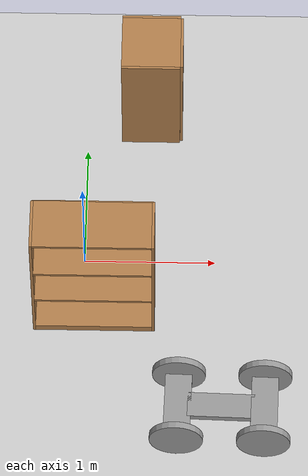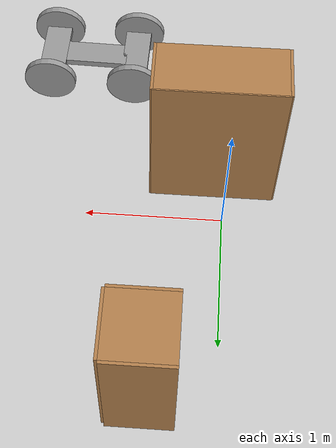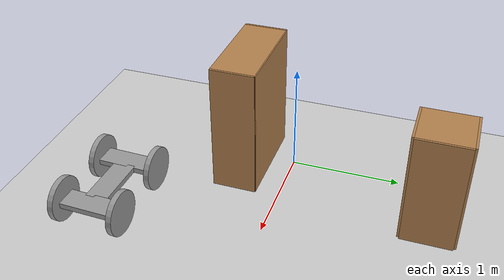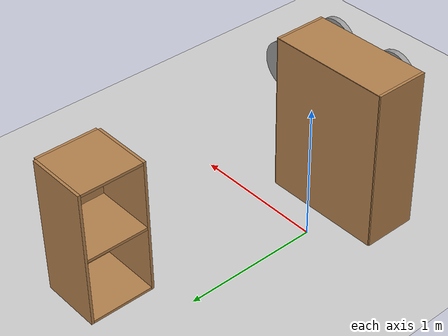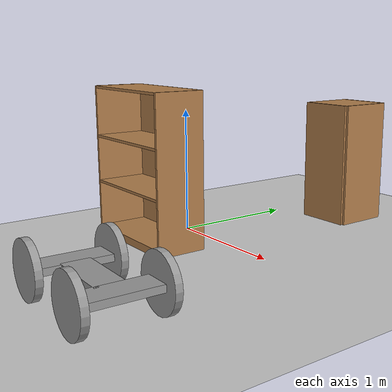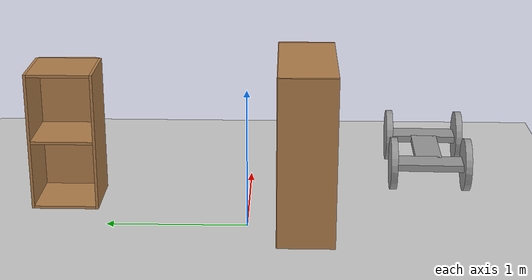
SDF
<sdf version="1.6">
 <world name="default">
  <model name="ground_plane">
   <static>1</static>
   <link name="link">
    <collision name="collision">
     <geometry><plane><normal>0 0 1</normal><size>100 100</size></plane></geometry>
     <surface><friction><ode><mu>100</mu><mu2>50</mu2></ode></friction></surface>
    </collision>
    <visual name="visual">
     <cast_shadows>0</cast_shadows>
     <geometry><plane><normal>0 0 1</normal><size>100 100</size></plane></geometry>
     <material>
      <script><uri>file://media/materials/scripts/gazebo.material</uri><name>Gazebo/Grey</name></script>
     </material>
    </visual>
   </link>
  </model>
  <model name="rccar-no-friction_clone">
   <link name="link_0">
    <pose>-0 0 0.2 0 -0 0</pose>
    <inertial>
     <mass>1</mass>
     <inertia>
      <ixx>0.166667</ixx>
      <ixy>0</ixy>
      <ixz>0</ixz>
      <iyy>0.166667</iyy>
      <iyz>0</iyz>
      <izz>0.166667</izz>
     </inertia>
    </inertial>
    <visual name="visual">
     <geometry><box><size>0.5 0.2 0.05</size></box></geometry>
     <material>
      <lighting>1</lighting>
      <script><uri>file://media/materials/scripts/gazebo.material</uri><name>Gazebo/Grey</name></script>
      <ambient>0.3 0.3 0.3 1</ambient>
      <diffuse>0.7 0.7 0.7 1</diffuse>
      <specular>0.01 0.01 0.01 1</specular>
      <emissive>0 0 0 1</emissive>
      <shader type="vertex"><normal_map>__default__</normal_map></shader>
     </material>
    </visual>
    <collision name="collision">
     <geometry><box><size>0.5 0.2 0.05</size></box></geometry>
     <surface>
      <friction>
       <ode><mu>1</mu><mu2>1</mu2><fdir1>0 0 0</fdir1><slip1>0</slip1><slip2>0</slip2></ode>
       <torsional>
        <coefficient>1</coefficient>
        <patch_radius>0</patch_radius>
        <surface_radius>0</surface_radius>
        <use_patch_radius>1</use_patch_radius>
        <ode><slip>0</slip></ode>
       </torsional>
      </friction>
      <bounce><restitution_coefficient>0</restitution_coefficient><threshold>1e+06</threshold></bounce>
      <contact>
       <collide_without_contact>0</collide_without_contact>
       <collide_without_contact_bitmask>1</collide_without_contact_bitmask>
       <collide_bitmask>1</collide_bitmask>
       <ode>
        <soft_cfm>0</soft_cfm>
        <soft_erp>0.2</soft_erp>
        <kp>1e+13</kp>
        <kd>1</kd>
        <max_vel>0.01</max_vel>
        <min_depth>0</min_depth>
       </ode>
       <bullet>
        <split_impulse>1</split_impulse>
        <split_impulse_penetration_threshold>-0.01</split_impulse_penetration_threshold>
        <soft_cfm>0</soft_cfm>
        <soft_erp>0.2</soft_erp>
        <kp>1e+13</kp>
        <kd>1</kd>
       </bullet>
      </contact>
     </surface>
    </collision>
   </link>
   <link name="link_0_0">
    <pose>-0 -0.322937 0.2 0 -0 0</pose>
    <inertial>
     <mass>1</mass>
     <inertia>
      <ixx>0.166667</ixx>
      <ixy>0</ixy>
      <ixz>0</ixz>
      <iyy>0.166667</iyy>
      <iyz>0</iyz>
      <izz>0.166667</izz>
     </inertia>
    </inertial>
    <visual name="visual">
     <geometry><box><size>0.2 0.5 0.05</size></box></geometry>
     <material>
      <lighting>1</lighting>
      <script><uri>file://media/materials/scripts/gazebo.material</uri><name>Gazebo/Grey</name></script>
      <ambient>0.3 0.3 0.3 1</ambient>
      <diffuse>0.7 0.7 0.7 1</diffuse>
      <specular>0.01 0.01 0.01 1</specular>
      <emissive>0 0 0 1</emissive>
      <shader type="vertex"><normal_map>__default__</normal_map></shader>
     </material>
    </visual>
    <collision name="collision">
     <geometry><box><size>0.2 0.5 0.05</size></box></geometry>
     <surface>
      <friction>
       <ode><mu>1</mu><mu2>1</mu2><fdir1>0 0 0</fdir1><slip1>0</slip1><slip2>0</slip2></ode>
       <torsional>
        <coefficient>1</coefficient>
        <patch_radius>0</patch_radius>
        <surface_radius>0</surface_radius>
        <use_patch_radius>1</use_patch_radius>
        <ode><slip>0</slip></ode>
       </torsional>
      </friction>
      <bounce><restitution_coefficient>0</restitution_coefficient><threshold>1e+06</threshold></bounce>
      <contact>
       <collide_without_contact>0</collide_without_contact>
       <collide_without_contact_bitmask>1</collide_without_contact_bitmask>
       <collide_bitmask>1</collide_bitmask>
       <ode>
        <soft_cfm>0</soft_cfm>
        <soft_erp>0.2</soft_erp>
        <kp>1e+13</kp>
        <kd>1</kd>
        <max_vel>0.01</max_vel>
        <min_depth>0</min_depth>
       </ode>
       <bullet>
        <split_impulse>1</split_impulse>
        <split_impulse_penetration_threshold>-0.01</split_impulse_penetration_threshold>
        <soft_cfm>0</soft_cfm>
        <soft_erp>0.2</soft_erp>
        <kp>1e+13</kp>
        <kd>1</kd>
       </bullet>
      </contact>
     </surface>
    </collision>
   </link>
   <link name="link_0_clone">
    <pose>0.002934 -0.646886 0.2 0 -0 0</pose>
    <inertial>
     <mass>1</mass>
     <inertia>
      <ixx>0.166667</ixx>
      <ixy>0</ixy>
      <ixz>0</ixz>
      <iyy>0.166667</iyy>
      <iyz>0</iyz>
      <izz>0.166667</izz>
     </inertia>
    </inertial>
    <visual name="visual">
     <geometry><box><size>0.5 0.2 0.05</size></box></geometry>
     <material>
      <lighting>1</lighting>
      <script><uri>file://media/materials/scripts/gazebo.material</uri><name>Gazebo/Grey</name></script>
      <ambient>0.3 0.3 0.3 1</ambient>
      <diffuse>0.7 0.7 0.7 1</diffuse>
      <specular>0.01 0.01 0.01 1</specular>
      <emissive>0 0 0 1</emissive>
      <shader type="vertex"><normal_map>__default__</normal_map></shader>
     </material>
    </visual>
    <collision name="collision">
     <geometry><box><size>0.5 0.2 0.05</size></box></geometry>
     <surface>
      <friction>
       <ode><mu>1</mu><mu2>1</mu2><fdir1>0 0 0</fdir1><slip1>0</slip1><slip2>0</slip2></ode>
       <torsional>
        <coefficient>1</coefficient>
        <patch_radius>0</patch_radius>
        <surface_radius>0</surface_radius>
        <use_patch_radius>1</use_patch_radius>
        <ode><slip>0</slip></ode>
       </torsional>
      </friction>
      <bounce><restitution_coefficient>0</restitution_coefficient><threshold>1e+06</threshold></bounce>
      <contact>
       <collide_without_contact>0</collide_without_contact>
       <collide_without_contact_bitmask>1</collide_without_contact_bitmask>
       <collide_bitmask>1</collide_bitmask>
       <ode>
        <soft_cfm>0</soft_cfm>
        <soft_erp>0.2</soft_erp>
        <kp>1e+13</kp>
        <kd>1</kd>
        <max_vel>0.01</max_vel>
        <min_depth>0</min_depth>
       </ode>
       <bullet>
        <split_impulse>1</split_impulse>
        <split_impulse_penetration_threshold>-0.01</split_impulse_penetration_threshold>
        <soft_cfm>0</soft_cfm>
        <soft_erp>0.2</soft_erp>
        <kp>1e+13</kp>
        <kd>1</kd>
       </bullet>
      </contact>
     </surface>
    </collision>
   </link>
   <link name="link_1">
    <pose>0.275001 -0 0.2 1.5708 -0 1.5708</pose>
    <inertial>
     <mass>1</mass>
     <inertia><ixx>0.145833</ixx><ixy>0</ixy><ixz>0</ixz><iyy>0.145833</iyy><iyz>0</iyz><izz>0.125</izz></inertia>
    </inertial>
    <visual name="visual">
     <geometry><cylinder><radius>0.2</radius><length>0.05</length></cylinder></geometry>
     <material>
      <lighting>1</lighting>
      <script><uri>file://media/materials/scripts/gazebo.material</uri><name>Gazebo/Grey</name></script>
      <ambient>0.3 0.3 0.3 1</ambient>
      <diffuse>0.7 0.7 0.7 1</diffuse>
      <specular>0.01 0.01 0.01 1</specular>
      <emissive>0 0 0 1</emissive>
      <shader type="vertex"><normal_map>__default__</normal_map></shader>
     </material>
    </visual>
    <collision name="collision">
     <geometry><cylinder><radius>0.2</radius><length>0.05</length></cylinder></geometry>
     <surface>
      <friction>
       <ode><mu>1</mu><mu2>1</mu2><fdir1>0 0 0</fdir1><slip1>0</slip1><slip2>0</slip2></ode>
       <torsional>
        <coefficient>1</coefficient>
        <patch_radius>0</patch_radius>
        <surface_radius>0</surface_radius>
        <use_patch_radius>1</use_patch_radius>
        <ode><slip>0</slip></ode>
       </torsional>
      </friction>
      <bounce><restitution_coefficient>0</restitution_coefficient><threshold>1e+06</threshold></bounce>
      <contact>
       <collide_without_contact>0</collide_without_contact>
       <collide_without_contact_bitmask>1</collide_without_contact_bitmask>
       <collide_bitmask>1</collide_bitmask>
       <ode>
        <soft_cfm>0</soft_cfm>
        <soft_erp>0.2</soft_erp>
        <kp>1e+13</kp>
        <kd>1</kd>
        <max_vel>0.01</max_vel>
        <min_depth>0</min_depth>
       </ode>
       <bullet>
        <split_impulse>1</split_impulse>
        <split_impulse_penetration_threshold>-0.01</split_impulse_penetration_threshold>
        <soft_cfm>0</soft_cfm>
        <soft_erp>0.2</soft_erp>
        <kp>1e+13</kp>
        <kd>1</kd>
       </bullet>
      </contact>
     </surface>
    </collision>
   </link>
   <link name="link_1_clone">
    <pose>-0.275001 0 0.2 -1.5708 0 1.5708</pose>
    <inertial>
     <mass>1</mass>
     <inertia><ixx>0.145833</ixx><ixy>0</ixy><ixz>0</ixz><iyy>0.145833</iyy><iyz>0</iyz><izz>0.125</izz></inertia>
    </inertial>
    <visual name="visual">
     <geometry><cylinder><radius>0.2</radius><length>0.05</length></cylinder></geometry>
     <material>
      <lighting>1</lighting>
      <script><uri>file://media/materials/scripts/gazebo.material</uri><name>Gazebo/Grey</name></script>
      <ambient>0.3 0.3 0.3 1</ambient>
      <diffuse>0.7 0.7 0.7 1</diffuse>
      <specular>0.01 0.01 0.01 1</specular>
      <emissive>0 0 0 1</emissive>
      <shader type="vertex"><normal_map>__default__</normal_map></shader>
     </material>
    </visual>
    <collision name="collision">
     <geometry><cylinder><radius>0.2</radius><length>0.05</length></cylinder></geometry>
     <surface>
      <friction>
       <ode><mu>1</mu><mu2>1</mu2><fdir1>0 0 0</fdir1><slip1>0</slip1><slip2>0</slip2></ode>
       <torsional>
        <coefficient>1</coefficient>
        <patch_radius>0</patch_radius>
        <surface_radius>0</surface_radius>
        <use_patch_radius>1</use_patch_radius>
        <ode><slip>0</slip></ode>
       </torsional>
      </friction>
      <bounce><restitution_coefficient>0</restitution_coefficient><threshold>1e+06</threshold></bounce>
      <contact>
       <collide_without_contact>0</collide_without_contact>
       <collide_without_contact_bitmask>1</collide_without_contact_bitmask>
       <collide_bitmask>1</collide_bitmask>
       <ode>
        <soft_cfm>0</soft_cfm>
        <soft_erp>0.2</soft_erp>
        <kp>1e+13</kp>
        <kd>1</kd>
        <max_vel>0.01</max_vel>
        <min_depth>0</min_depth>
       </ode>
       <bullet>
        <split_impulse>1</split_impulse>
        <split_impulse_penetration_threshold>-0.01</split_impulse_penetration_threshold>
        <soft_cfm>0</soft_cfm>
        <soft_erp>0.2</soft_erp>
        <kp>1e+13</kp>
        <kd>1</kd>
       </bullet>
      </contact>
     </surface>
    </collision>
   </link>
   <link name="link_1_clone_clone">
    <pose>-0.272068 -0.646886 0.2 -1.5708 0 1.5708</pose>
    <inertial>
     <mass>1</mass>
     <inertia><ixx>0.145833</ixx><ixy>0</ixy><ixz>0</ixz><iyy>0.145833</iyy><iyz>0</iyz><izz>0.125</izz></inertia>
    </inertial>
    <visual name="visual">
     <geometry><cylinder><radius>0.2</radius><length>0.05</length></cylinder></geometry>
     <material>
      <lighting>1</lighting>
      <script><uri>file://media/materials/scripts/gazebo.material</uri><name>Gazebo/Grey</name></script>
      <ambient>0.3 0.3 0.3 1</ambient>
      <diffuse>0.7 0.7 0.7 1</diffuse>
      <specular>0.01 0.01 0.01 1</specular>
      <emissive>0 0 0 1</emissive>
      <shader type="vertex"><normal_map>__default__</normal_map></shader>
     </material>
    </visual>
    <collision name="collision">
     <geometry><cylinder><radius>0.2</radius><length>0.05</length></cylinder></geometry>
     <surface>
      <friction>
       <ode><mu>1</mu><mu2>1</mu2><fdir1>0 0 0</fdir1><slip1>0</slip1><slip2>0</slip2></ode>
       <torsional>
        <coefficient>1</coefficient>
        <patch_radius>0</patch_radius>
        <surface_radius>0</surface_radius>
        <use_patch_radius>1</use_patch_radius>
        <ode><slip>0</slip></ode>
       </torsional>
      </friction>
      <bounce><restitution_coefficient>0</restitution_coefficient><threshold>1e+06</threshold></bounce>
      <contact>
       <collide_without_contact>0</collide_without_contact>
       <collide_without_contact_bitmask>1</collide_without_contact_bitmask>
       <collide_bitmask>1</collide_bitmask>
       <ode>
        <soft_cfm>0</soft_cfm>
        <soft_erp>0.2</soft_erp>
        <kp>1e+13</kp>
        <kd>1</kd>
        <max_vel>0.01</max_vel>
        <min_depth>0</min_depth>
       </ode>
       <bullet>
        <split_impulse>1</split_impulse>
        <split_impulse_penetration_threshold>-0.01</split_impulse_penetration_threshold>
        <soft_cfm>0</soft_cfm>
        <soft_erp>0.2</soft_erp>
        <kp>1e+13</kp>
        <kd>1</kd>
       </bullet>
      </contact>
     </surface>
    </collision>
   </link>
   <link name="link_1_clone_clone_0">
    <pose>0.277936 -0.646886 0.2 -1.5708 0 1.5708</pose>
    <inertial>
     <mass>1</mass>
     <inertia><ixx>0.145833</ixx><ixy>0</ixy><ixz>0</ixz><iyy>0.145833</iyy><iyz>0</iyz><izz>0.125</izz></inertia>
    </inertial>
    <visual name="visual">
     <geometry><cylinder><radius>0.2</radius><length>0.05</length></cylinder></geometry>
     <material>
      <lighting>1</lighting>
      <script><uri>file://media/materials/scripts/gazebo.material</uri><name>Gazebo/Grey</name></script>
      <ambient>0.3 0.3 0.3 1</ambient>
      <diffuse>0.7 0.7 0.7 1</diffuse>
      <specular>0.01 0.01 0.01 1</specular>
      <emissive>0 0 0 1</emissive>
      <shader type="vertex"><normal_map>__default__</normal_map></shader>
     </material>
    </visual>
    <collision name="collision">
     <geometry><cylinder><radius>0.2</radius><length>0.05</length></cylinder></geometry>
     <surface>
      <friction>
       <ode><mu>1</mu><mu2>1</mu2><fdir1>0 0 0</fdir1><slip1>0</slip1><slip2>0</slip2></ode>
       <torsional>
        <coefficient>1</coefficient>
        <patch_radius>0</patch_radius>
        <surface_radius>0</surface_radius>
        <use_patch_radius>1</use_patch_radius>
        <ode><slip>0</slip></ode>
       </torsional>
      </friction>
      <bounce><restitution_coefficient>0</restitution_coefficient><threshold>1e+06</threshold></bounce>
      <contact>
       <collide_without_contact>0</collide_without_contact>
       <collide_without_contact_bitmask>1</collide_without_contact_bitmask>
       <collide_bitmask>1</collide_bitmask>
       <ode>
        <soft_cfm>0</soft_cfm>
        <soft_erp>0.2</soft_erp>
        <kp>1e+13</kp>
        <kd>1</kd>
        <max_vel>0.01</max_vel>
        <min_depth>0</min_depth>
       </ode>
       <bullet>
        <split_impulse>1</split_impulse>
        <split_impulse_penetration_threshold>-0.01</split_impulse_penetration_threshold>
        <soft_cfm>0</soft_cfm>
        <soft_erp>0.2</soft_erp>
        <kp>1e+13</kp>
        <kd>1</kd>
       </bullet>
      </contact>
     </surface>
    </collision>
   </link>
   <joint name="link_0_0_JOINT_2" type="fixed">
    <parent>link_0</parent>
    <child>link_0_0</child>
    <physics>
     <ode><limit><cfm>0</cfm><erp>0.2</erp></limit><suspension><cfm>0</cfm><erp>0.2</erp></suspension></ode>
    </physics>
   </joint>
   <joint name="link_0_0_JOINT_3" type="fixed">
    <parent>link_0_0</parent>
    <child>link_0_clone</child>
    <physics>
     <ode><limit><cfm>0</cfm><erp>0.2</erp></limit><suspension><cfm>0</cfm><erp>0.2</erp></suspension></ode>
    </physics>
   </joint>
   <joint name="link_0_JOINT_0" type="revolute">
    <parent>link_0</parent>
    <child>link_1</child>
    <axis>
     <xyz>0 0 1</xyz>
     <use_parent_model_frame>0</use_parent_model_frame>
     <limit>
      <lower>-1.79769e+308</lower>
      <upper>1.79769e+308</upper>
      <effort>-1</effort>
      <velocity>-1</velocity>
     </limit>
     <dynamics>
      <spring_reference>0</spring_reference>
      <spring_stiffness>0</spring_stiffness>
      <damping>0</damping>
      <friction>0</friction>
     </dynamics>
    </axis>
    <physics>
     <ode><limit><cfm>0</cfm><erp>0.2</erp></limit><suspension><cfm>0</cfm><erp>0.2</erp></suspension></ode>
    </physics>
   </joint>
   <joint name="link_0_JOINT_2" type="revolute">
    <parent>link_0</parent>
    <child>link_1_clone</child>
    <axis>
     <xyz>0 0 1</xyz>
     <use_parent_model_frame>0</use_parent_model_frame>
     <limit>
      <lower>-1.79769e+308</lower>
      <upper>1.79769e+308</upper>
      <effort>-1</effort>
      <velocity>-1</velocity>
     </limit>
     <dynamics>
      <spring_reference>0</spring_reference>
      <spring_stiffness>0</spring_stiffness>
      <damping>0</damping>
      <friction>0</friction>
     </dynamics>
    </axis>
    <physics>
     <ode><limit><cfm>0</cfm><erp>0.2</erp></limit><suspension><cfm>0</cfm><erp>0.2</erp></suspension></ode>
    </physics>
   </joint>
   <joint name="link_0_clone_JOINT_4" type="revolute">
    <parent>link_0_clone</parent>
    <child>link_1_clone_clone</child>
    <axis>
     <xyz>0 0 1</xyz>
     <use_parent_model_frame>0</use_parent_model_frame>
     <limit>
      <lower>-1.79769e+308</lower>
      <upper>1.79769e+308</upper>
      <effort>-1</effort>
      <velocity>-1</velocity>
     </limit>
     <dynamics>
      <spring_reference>0</spring_reference>
      <spring_stiffness>0</spring_stiffness>
      <damping>0</damping>
      <friction>0</friction>
     </dynamics>
    </axis>
    <physics>
     <ode><limit><cfm>0</cfm><erp>0.2</erp></limit><suspension><cfm>0</cfm><erp>0.2</erp></suspension></ode>
    </physics>
   </joint>
   <joint name="link_0_clone_JOINT_5" type="revolute">
    <parent>link_0_clone</parent>
    <child>link_1_clone_clone_0</child>
    <axis>
     <xyz>0 0 -1</xyz>
     <use_parent_model_frame>0</use_parent_model_frame>
     <limit>
      <lower>-1.79769e+308</lower>
      <upper>1.79769e+308</upper>
      <effort>-1</effort>
      <velocity>-1</velocity>
     </limit>
     <dynamics>
      <spring_reference>0</spring_reference>
      <spring_stiffness>0</spring_stiffness>
      <damping>0</damping>
      <friction>0</friction>
     </dynamics>
    </axis>
    <physics>
     <ode><limit><cfm>0</cfm><erp>0.2</erp></limit><suspension><cfm>0</cfm><erp>0.2</erp></suspension></ode>
    </physics>
   </joint>
   <static>0</static>
   <pose>0.730696 -1.36091 -3e-06 -4e-06 -3e-06 1.54341</pose>
  </model>
  <model name="bookshelf">
   <static>1</static>
   <link name="link">
    <inertial><mass>1</mass></inertial>
    <collision name="back">
     <pose>0 0.005 0.6 0 -0 0</pose>
     <geometry><box><size>0.9 0.01 1.2</size></box></geometry>
    </collision>
    <visual name="visual1">
     <pose>0 0.005 0.6 0 -0 0</pose>
     <geometry><box><size>0.9 0.01 1.2</size></box></geometry>
     <material>
      <script><uri>file://media/materials/scripts/gazebo.material</uri><name>Gazebo/Wood</name></script>
     </material>
    </visual>
    <collision name="left_side">
     <pose>0.45 -0.195 0.6 0 -0 0</pose>
     <geometry><box><size>0.02 0.4 1.2</size></box></geometry>
    </collision>
    <visual name="visual2">
     <pose>0.45 -0.195 0.6 0 -0 0</pose>
     <geometry><box><size>0.02 0.4 1.2</size></box></geometry>
     <material>
      <script><uri>file://media/materials/scripts/gazebo.material</uri><name>Gazebo/Wood</name></script>
     </material>
    </visual>
    <collision name="right_side">
     <pose>-0.45 -0.195 0.6 0 -0 0</pose>
     <geometry><box><size>0.02 0.4 1.2</size></box></geometry>
    </collision>
    <visual name="visual3">
     <pose>-0.45 -0.195 0.6 0 -0 0</pose>
     <geometry><box><size>0.02 0.4 1.2</size></box></geometry>
     <material>
      <script><uri>file://media/materials/scripts/gazebo.material</uri><name>Gazebo/Wood</name></script>
     </material>
    </visual>
    <collision name="bottom">
     <pose>0 -0.195 0.03 0 -0 0</pose>
     <geometry><box><size>0.88 0.4 0.06</size></box></geometry>
    </collision>
    <visual name="visual4">
     <pose>0 -0.195 0.03 0 -0 0</pose>
     <geometry><box><size>0.88 0.4 0.06</size></box></geometry>
     <material>
      <script><uri>file://media/materials/scripts/gazebo.material</uri><name>Gazebo/Wood</name></script>
     </material>
    </visual>
    <collision name="top">
     <pose>0 -0.195 1.19 0 -0 0</pose>
     <geometry><box><size>0.88 0.4 0.02</size></box></geometry>
    </collision>
    <visual name="visual5">
     <pose>0 -0.195 1.19 0 -0 0</pose>
     <geometry><box><size>0.88 0.4 0.02</size></box></geometry>
     <material>
      <script><uri>file://media/materials/scripts/gazebo.material</uri><name>Gazebo/Wood</name></script>
     </material>
    </visual>
    <collision name="low_shelf">
     <pose>0 -0.195 0.43 0 -0 0</pose>
     <geometry><box><size>0.88 0.4 0.02</size></box></geometry>
    </collision>
    <visual name="visual6">
     <pose>0 -0.195 0.43 0 -0 0</pose>
     <geometry><box><size>0.88 0.4 0.02</size></box></geometry>
     <material>
      <script><uri>file://media/materials/scripts/gazebo.material</uri><name>Gazebo/Wood</name></script>
     </material>
    </visual>
    <collision name="high_shelf">
     <pose>0 -0.195 0.8 0 -0 0</pose>
     <geometry><box><size>0.88 0.4 0.02</size></box></geometry>
    </collision>
    <visual name="visual7">
     <pose>0 -0.195 0.8 0 -0 0</pose>
     <geometry><box><size>0.88 0.4 0.02</size></box></geometry>
     <material>
      <script><uri>file://media/materials/scripts/gazebo.material</uri><name>Gazebo/Wood</name></script>
     </material>
    </visual>
   </link>
   <pose>0.085011 -0.215763 0 0 -0 0</pose>
  </model>
  <model name="cabinet">
   <static>1</static>
   <link name="cabinet_bottom_plate">
    <inertial>
     <pose>0 0 -1 0 -0 0</pose>
     <inertia><ixx>2.05</ixx><ixy>0</ixy><ixz>0</ixz><iyy>2.05</iyy><iyz>0</iyz><izz>2.05</izz></inertia>
     <mass>25</mass>
    </inertial>
    <collision name="cabinet_bottom_plate_geom">
     <pose>0 0 0.01 0 -0 0</pose>
     <geometry><box><size>0.45 0.45 0.02</size></box></geometry>
    </collision>
    <visual name="cabinet_bottom_plate_geom_visual">
     <pose>0 0 0.01 0 -0 0</pose>
     <geometry><box><size>0.45 0.45 0.02</size></box></geometry>
     <material>
      <script><uri>file://media/materials/scripts/gazebo.material</uri><name>Gazebo/Wood</name></script>
     </material>
    </visual>
    <collision name="cabinet_bottom_plate_geom_cabinet_back_plate">
     <pose>0.235 0 0.51 0 -0 0</pose>
     <geometry><box><size>0.02 0.45 1.02</size></box></geometry>
    </collision>
    <visual name="cabinet_bottom_plate_geom_cabinet_back_plate_visual">
     <pose>0.235 0 0.51 0 -0 0</pose>
     <geometry><box><size>0.02 0.45 1.02</size></box></geometry>
     <material>
      <script><uri>file://media/materials/scripts/gazebo.material</uri><name>Gazebo/Wood</name></script>
     </material>
    </visual>
    <collision name="cabinet_bottom_plate_geom_cabinet_left_plate">
     <pose>0 0.235 0.51 0 -0 0</pose>
     <geometry><box><size>0.45 0.02 1.02</size></box></geometry>
    </collision>
    <visual name="cabinet_bottom_plate_geom_cabinet_left_plate_visual">
     <pose>0 0.235 0.51 0 -0 0</pose>
     <geometry><box><size>0.45 0.02 1.02</size></box></geometry>
     <material>
      <script><uri>file://media/materials/scripts/gazebo.material</uri><name>Gazebo/Wood</name></script>
     </material>
    </visual>
    <collision name="cabinet_bottom_plate_geom_cabinet_middle_plate">
     <pose>0 0 0.51 0 -0 0</pose>
     <geometry><box><size>0.45 0.45 0.02</size></box></geometry>
    </collision>
    <visual name="cabinet_bottom_plate_geom_cabinet_middle_plate_visual">
     <pose>0 0 0.51 0 -0 0</pose>
     <geometry><box><size>0.45 0.45 0.02</size></box></geometry>
     <material>
      <script><uri>file://media/materials/scripts/gazebo.material</uri><name>Gazebo/Wood</name></script>
     </material>
    </visual>
    <collision name="cabinet_bottom_plate_geom_cabinet_right_plate">
     <pose>0 -0.235 0.51 0 -0 0</pose>
     <geometry><box><size>0.45 0.02 1.02</size></box></geometry>
    </collision>
    <visual name="cabinet_bottom_plate_geom_cabinet_right_plate_visual">
     <pose>0 -0.235 0.51 0 -0 0</pose>
     <geometry><box><size>0.45 0.02 1.02</size></box></geometry>
     <material>
      <script><uri>file://media/materials/scripts/gazebo.material</uri><name>Gazebo/Wood</name></script>
     </material>
    </visual>
    <collision name="cabinet_bottom_plate_geom_cabinet_top_plate">
     <pose>0 0 1.01 0 -0 0</pose>
     <geometry><box><size>0.45 0.45 0.02</size></box></geometry>
    </collision>
    <visual name="cabinet_bottom_plate_geom_cabinet_top_plate_visual">
     <pose>0 0 1.01 0 -0 0</pose>
     <geometry><box><size>0.45 0.45 0.02</size></box></geometry>
     <material>
      <script><uri>file://media/materials/scripts/gazebo.material</uri><name>Gazebo/Wood</name></script>
     </material>
    </visual>
   </link>
   <pose>0.48729 1.34718 0 0 -0 0</pose>
  </model>
 </world>
</sdf>
